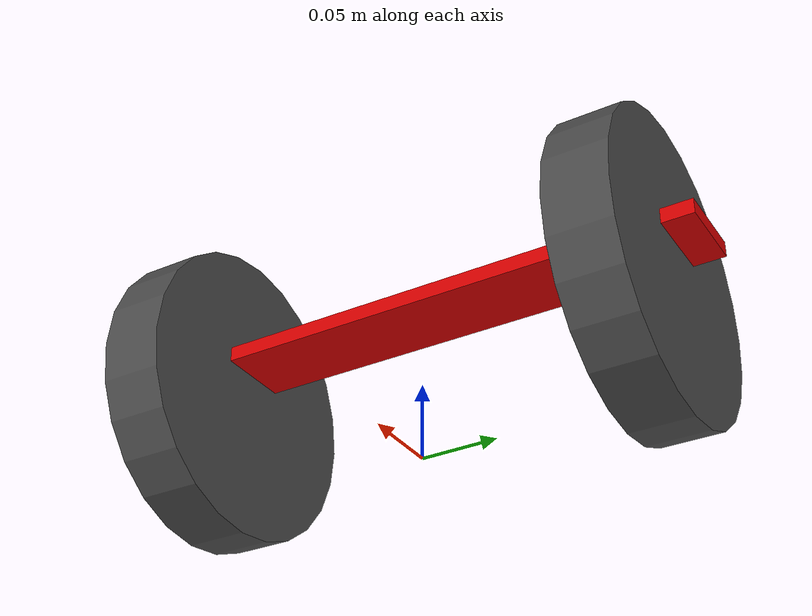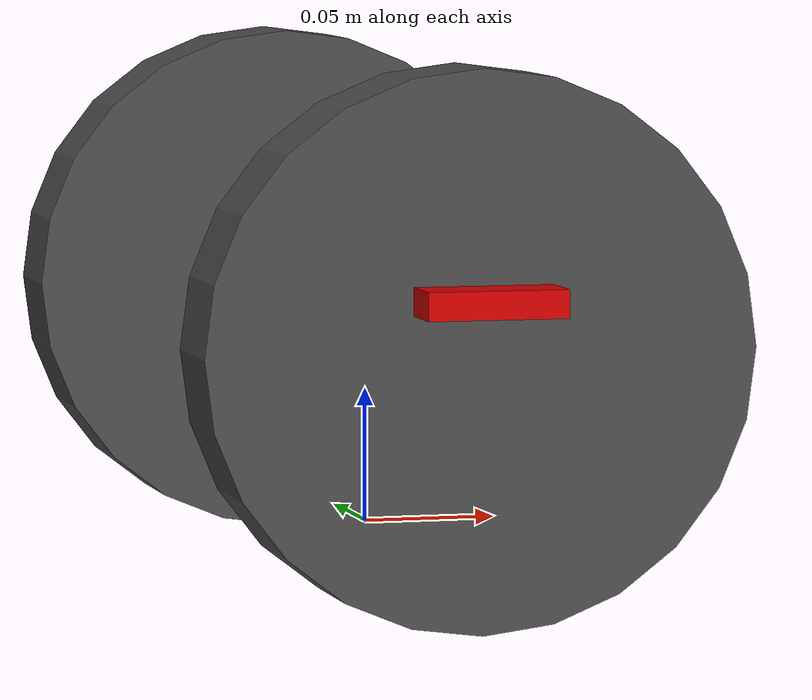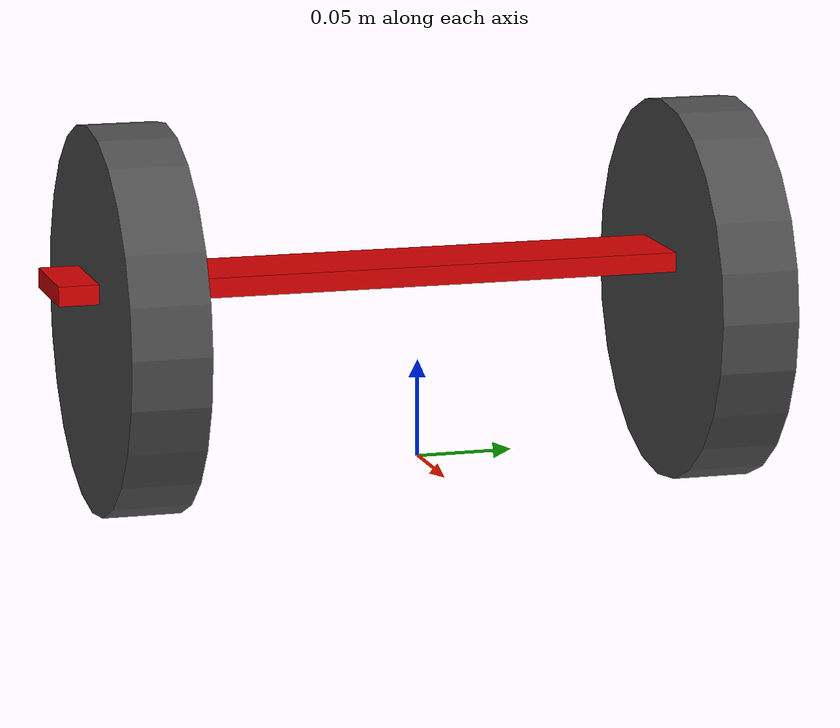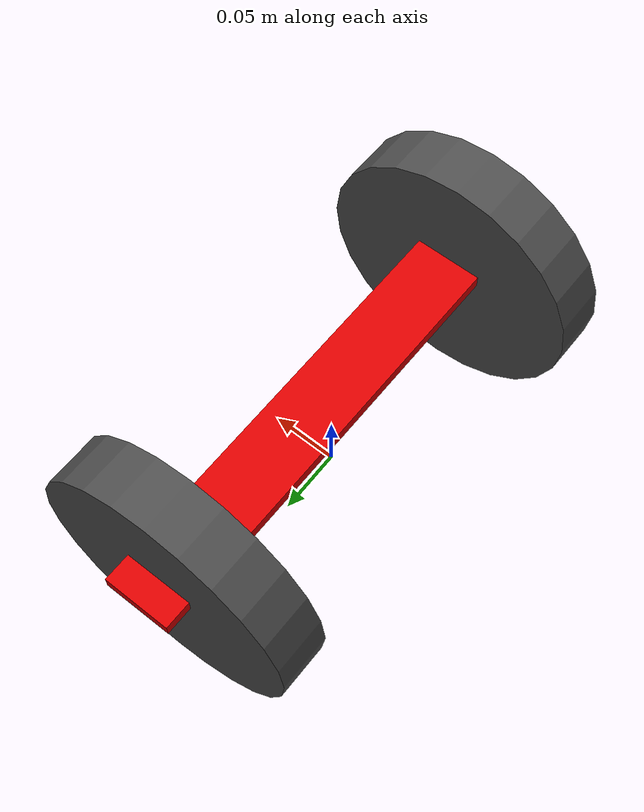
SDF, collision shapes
<sdf version='1.4'>
  <model name='robot'>

  <link name='base_footprint'>
      <pose>0 0 0 0 -0 0</pose>
      <inertial>
        <pose>-0.000133842 0 0.000672573 0 -0 0</pose>
        <mass>3.5101</mass>
        <inertia>
          <ixx>4.00055</ixx>
          <ixy>0</ixy>
          <ixz>0.000109102</ixz>
          <iyy>4.00057</iyy>
          <iyz>0</iyz>
          <izz>4.00002</izz>
        </inertia>
      </inertial>

      <collision name='base_link_collision'>
        <pose>0 0 0.0985 0 -0 0</pose>
        <geometry>
          <box>
            <size>0.05 0.381 0.01</size>
          </box>
        </geometry>
      </collision>

	  <!-- The visual elements and the used models are from https://github.com/MobileRobots/amr-ros-config (https://github.com/MobileRobots/amr-ros-config/tree/master/description/meshes/p3dx_meshes) -->
      <visual name='base_footprint_visual'>
        <pose>-0.045 0 0.148 0 -0 0</pose>
        <geometry>
          <mesh>
            <scale>1 1 1</scale>
            <uri>model://pioneer/description/meshes/p3dx_meshes/chassis.stl</uri>
          </mesh>
        </geometry>
		<!-- Adapted color -->
  		<material>
    		<ambient>0.851 0.5 0 1</ambient>
    		<diffuse>0.851 0 0 1</diffuse>
    		<specular>0 0 0 1</specular>
    		<emissive>0 0 0 1</emissive>
  		</material>
      </visual>

      <visual name='wheel_right_hubcap_visual'>
        <pose>0 -0.15 0.08 0 -0 0</pose>
        <geometry>
          <mesh>
            <scale>1 1 1</scale>
            <uri>model://pioneer/description/meshes/p3dx_meshes/right_hubcap.stl</uri>
          </mesh>
        </geometry>
		<!-- Adapted color -->
  		<material>
    		<ambient>0.851 0.5 0 1</ambient>
    		<diffuse>0.851 0 0 1</diffuse>
    		<specular>0 0 0 1</specular>
    		<emissive>0 0 0 1</emissive>
  		</material>
      </visual>

      <visual name='wheel_left_hubcap_visual'>
        <pose>0 0.15 0.08 0 -0 0</pose>
        <geometry>
          <mesh>
            <scale>1 1 1</scale>
            <uri>model://pioneer/description/meshes/p3dx_meshes/left_hubcap.stl</uri>
          </mesh>
        </geometry>
		<!-- Timo -->
  		<material>
    		<ambient>0.851 0.5 0 1</ambient>
    		<diffuse>0.851 0 0 1</diffuse>
    		<specular>0 0 0 1</specular>
    		<emissive>0 0 0 1</emissive>
  		</material>
      </visual>

      <visual name='caster_swivel_visual'>
        <pose>-0.185 0 0.055 0 -0 0</pose>
        <geometry>
          <mesh>
            <scale>1 1 1</scale>
            <uri>model://pioneer/description/meshes/p3dx_meshes/caster_swivel.stl</uri>
          </mesh>
        </geometry>
        <material>
          <script>
            <name>Gazebo/DarkGrey</name>
            <uri>__default__</uri>
          </script>
        </material>
      </visual>

      <visual name='caster_wheel_visual'>
        <pose>-0.211 0 0.039 0 -0 0</pose>
        <geometry>
          <mesh>
            <scale>1 1 1</scale>
            <uri>model://pioneer/description/meshes/p3dx_meshes/caster_wheel.stl</uri>
          </mesh>
        </geometry>
        <material>
          <script>
            <name>Gazebo/DarkGrey</name>
            <uri>__default__</uri>
          </script>
        </material>
      </visual>

      <visual name='base_link_visual_base_link_1'>
        <pose>0.109 0 0.209 0 -0 0</pose>
        <geometry>
          <mesh>
            <scale>1 1 1</scale>
            <uri>model://pioneer/description/meshes/p3dx_meshes/back_sonar.stl</uri>
          </mesh>
        </geometry>
		<!-- Adapted color -->
  		<material>
    		<ambient>0.715 0.583 0.210 1</ambient>
    		<diffuse>0.715 0.583 0.210 1</diffuse>
    		<specular>0.715 0.583 0.210 1</specular>
    		<emissive>0.715 0.583 0.210 1</emissive>
  		</material>
      </visual>

      <visual name='base_link_visual_base_link_2'>
        <pose>-0.198 0 0.208 0 -0 0</pose>
        <geometry>
          <mesh>
            <scale>1 1 1</scale>
            <uri>model://pioneer/description/meshes/p3dx_meshes/front_sonar.stl</uri>
          </mesh>
        </geometry>
		<!-- Adapted color -->
  		<material>
    		<ambient>0.715 0.583 0.210 1</ambient>
    		<diffuse>0.715 0.583 0.210 1</diffuse>
    		<specular>0.715 0.583 0.210 1</specular>
    		<emissive>0.715 0.583 0.210 1</emissive>
  		</material>
      </visual>

      <visual name='base_link_visual_base_link_3'>
        <pose>-0.045 0 0.234 0 -0 0</pose>
        <geometry>
          <mesh>
            <scale>1 1 1</scale>
            <uri>model://pioneer/description/meshes/p3dx_meshes/top.stl</uri>
          </mesh>
        </geometry>
		<!-- Adapted color -->
  		<material>
    		<ambient>0.038 0.038 0.038 1</ambient>
    		<diffuse>0.038 0.038 0.038 1</diffuse>
    		<specular>0 0 0 1</specular>
    		<emissive>0 0 0 1</emissive>
  		</material>
      </visual>

      <!-- End of visual elements -->

	<!-- Timo: Added imu sensor [start] -->
      <sensor name='base_imu_sensor' type='imu'>
        <always_on>1</always_on>
        <update_rate>100</update_rate>
        <imu>
          <noise>
            <type>gaussian</type>
            <rate>
              <mean>0</mean>
              <stddev>0.0002</stddev>
              <bias_mean>7.5e-06</bias_mean>
              <bias_stddev>8e-07</bias_stddev>
            </rate>
            <accel>
              <mean>0</mean>
              <stddev>0.017</stddev>
              <bias_mean>0.1</bias_mean>
              <bias_stddev>0.001</bias_stddev>
            </accel>
          </noise>
        </imu>
        <pose>0.10171 0 0.21132 0 0 -1.5708</pose>
      </sensor>
	<!-- Timo: Added imu sensor [end] -->

      <sensor name='base_laser' type='ray'>
        <update_rate>10</update_rate>
        <visualize>1</visualize>
        <ray>
          <scan>
            <horizontal>
              <samples>640</samples>
              <resolution>1</resolution>
              <min_angle>-1.91986</min_angle>
              <max_angle>1.91986</max_angle>
            </horizontal>
          </scan>
          <range>
            <min>0.05</min>
            <max>10</max>
            <resolution>0.001</resolution>
          </range>
        </ray>
        <pose>0.150 0 0.305 0 -0 0</pose>
	  </sensor>

	  <!-- This laser model is from https://github.com/pal-robotics/pmb2_robot/tree/indigo-devel/pmb2_description -->
	  <visual name='base_footprint_visual_base_laser_link'>
        <pose>0.150 0 0.305 0 -0 0</pose>
        <geometry>
          <mesh>
            <scale>1 1 1</scale>
            <uri>model://tiago/pmb2_description/meshes/sensors/sick_tim551.stl</uri>
          </mesh>
        </geometry>
        <material>
          <script>
            <name>Gazebo/White</name>
            <uri>__default__</uri>
          </script>
        </material>
      </visual>

	  <!-- End of laser element -->

	</link>

    <link name='wheel_left_link'>
	  <pose>0 0.15 0.08 -1.5708 -0 0</pose>
      <inertial>
        <pose>0 0 0.00207 0 -0 0</pose>
        <mass>1.82362</mass>
        <inertia>
          <ixx>0.00499743</ixx>
          <ixy>-4.464e-08</ixy>
          <ixz>-2.245e-08</ixz>
          <iyy>0.00499742</iyy>
          <iyz>1.64e-09</iyz>
          <izz>0.0083924</izz>
        </inertia>
      </inertial>
      <collision name='wheel_left_link_collision'>
        <pose>0 0 0 0 -0 0</pose>
        <geometry>
          <cylinder>
            <length>0.04</length>
            <radius>0.0985</radius>
          </cylinder>
        </geometry>
        <surface>
          <contact>
            <ode>
              <kp>1e+06</kp>
              <kd>100</kd>
              <max_vel>1</max_vel>
              <min_depth>0.003</min_depth>
            </ode>
          </contact>
          <friction>
            <ode>
              <mu>1</mu>
              <mu2>1</mu2>
              <fdir1>1 0 0</fdir1>
            </ode>
          </friction>
        </surface>
      </collision>
      <visual name='wheel_left_link_visual'>
        <pose>0 0 0 0 -0 0</pose>
        <geometry>
          <mesh>
            <scale>1 1 1</scale>
            <uri>model://pioneer/description/meshes/p3dx_meshes/left_wheel.stl</uri>
          </mesh>
        </geometry>
        <material>
          <script>
            <name>Gazebo/DarkGrey</name>
            <uri>__default__</uri>
          </script>
        </material>
      </visual>
      <gravity>1</gravity>
      <velocity_decay>
        <linear>0</linear>
        <angular>0</angular>
      </velocity_decay>
      <self_collide>0</self_collide>
    </link>
    <joint name='wheel_left_joint' type='revolute'>
      <child>wheel_left_link</child>
      <parent>base_footprint</parent>
      <axis>
        <xyz>0 1 4.89658e-12</xyz>
        <limit>
          <lower>-1e+16</lower>
          <upper>1e+16</upper>
        </limit>
        <dynamics/>
      </axis>
    </joint>
    <link name='wheel_right_link'>
	  <pose>0 -0.15 0.08 -1.5708 -0 0</pose>
      <inertial>
        <pose>0 0 -0.00207 0 -0 0</pose>
        <mass>1.82362</mass>
        <inertia>
          <ixx>0.00499743</ixx>
          <ixy>4.464e-08</ixy>
          <ixz>-2.245e-08</ixz>
          <iyy>0.00499742</iyy>
          <iyz>-1.64e-09</iyz>
          <izz>0.0083924</izz>
        </inertia>
      </inertial>
      <collision name='wheel_right_link_collision'>
        <pose>0 0 0 0 -0 0</pose>
        <geometry>
          <cylinder>
            <length>0.04</length>
            <radius>0.0985</radius>
          </cylinder>
        </geometry>
        <surface>
          <contact>
            <ode>
              <kp>1e+06</kp>
              <kd>100</kd>
              <max_vel>1</max_vel>
              <min_depth>0.003</min_depth>
            </ode>
          </contact>
          <friction>
            <ode>
              <mu>1</mu>
              <mu2>1</mu2>
              <fdir1>1 0 0</fdir1>
            </ode>
          </friction>
        </surface>
      </collision>
      <visual name='wheel_right_link_visual'>
		<pose>0 0 0 0 0 0</pose>
        <geometry>
          <mesh>
            <scale>1 1 1</scale>
            <uri>model://pioneer/description/meshes/p3dx_meshes/right_wheel.stl</uri>
          </mesh>
        </geometry>
        <material>
          <script>
            <name>Gazebo/DarkGrey</name>
            <uri>__default__</uri>
          </script>
        </material>
      </visual>
      <gravity>1</gravity>
      <velocity_decay>
        <linear>0</linear>
        <angular>0</angular>
      </velocity_decay>
      <self_collide>0</self_collide>
    </link>
    <joint name='wheel_right_joint' type='revolute'>
      <child>wheel_right_link</child>
      <parent>base_footprint</parent>
      <axis>
        <xyz>0 1 4.89658e-12</xyz>
        <limit>
          <lower>-1e+16</lower>
          <upper>1e+16</upper>
        </limit>
        <dynamics/>
      </axis>
    </joint>

    <!-- End of joint and link elements -->

  </model>
</sdf>
